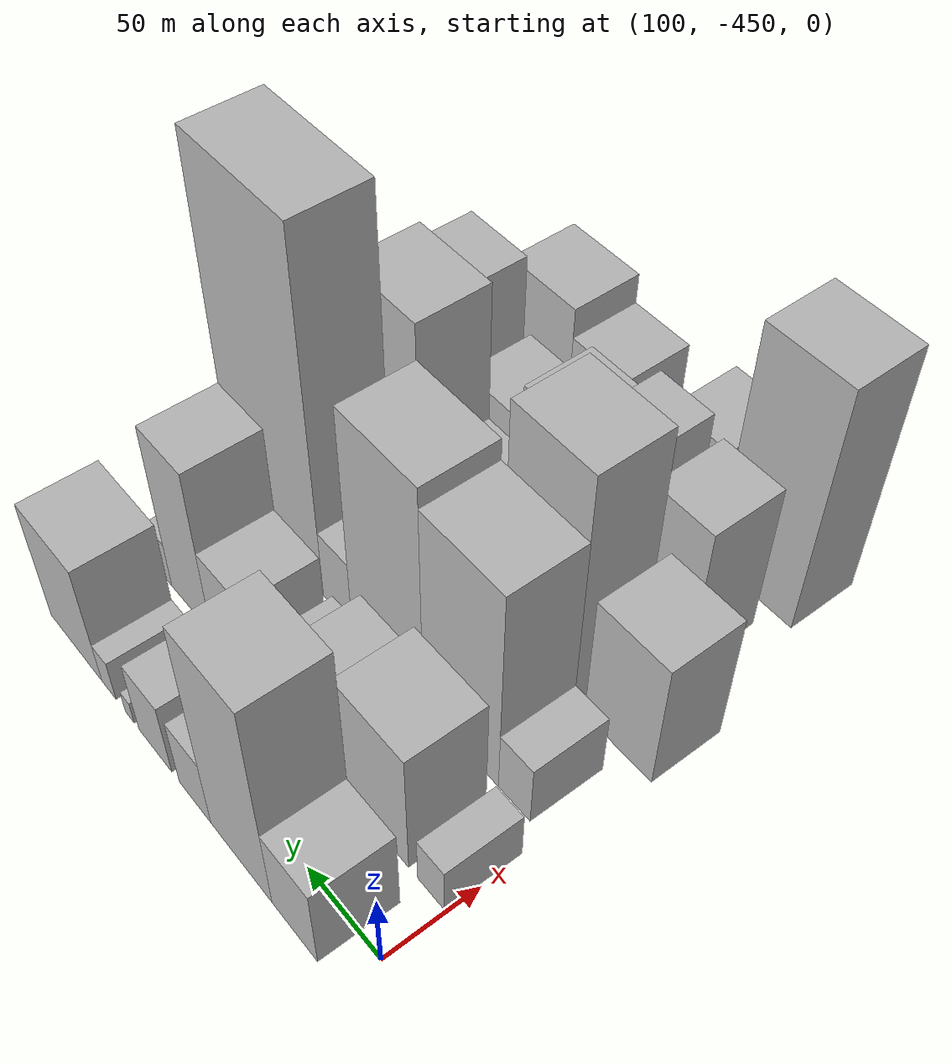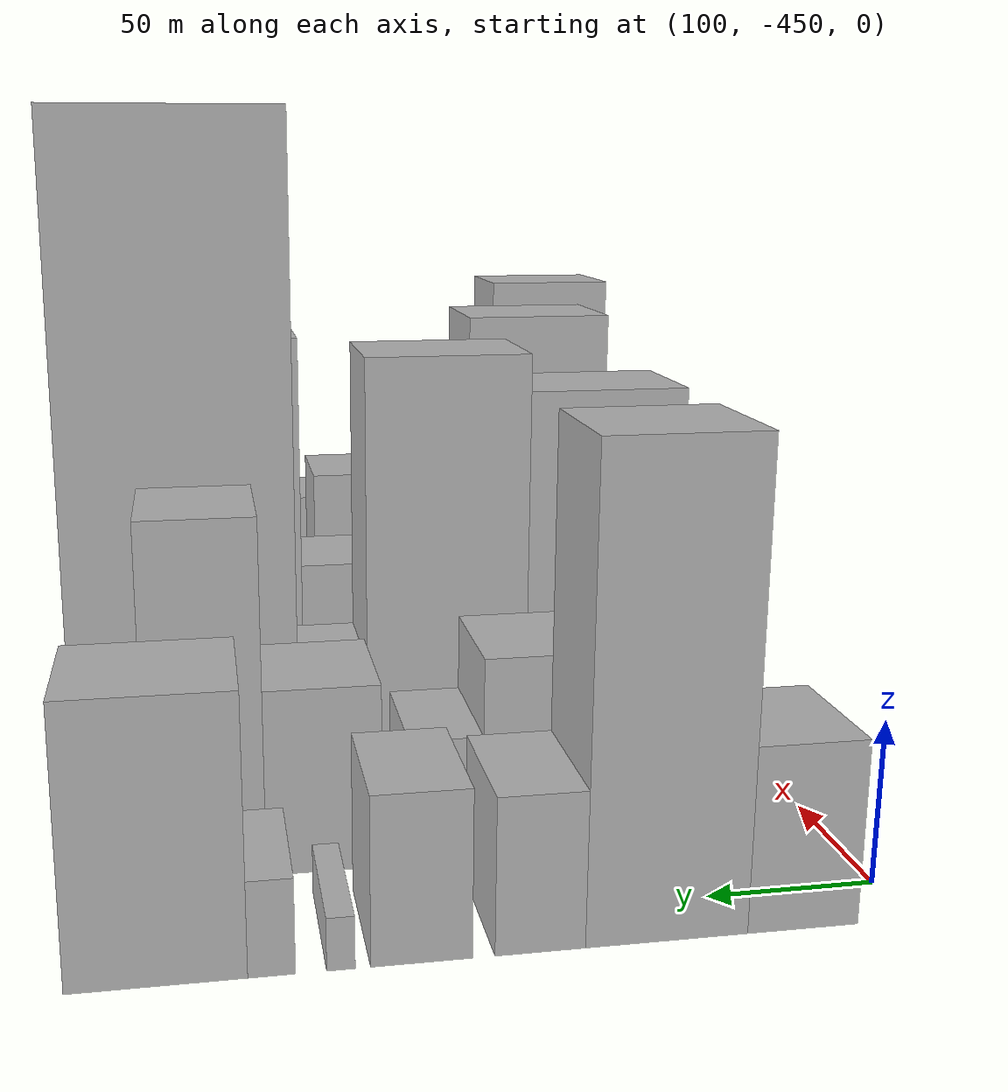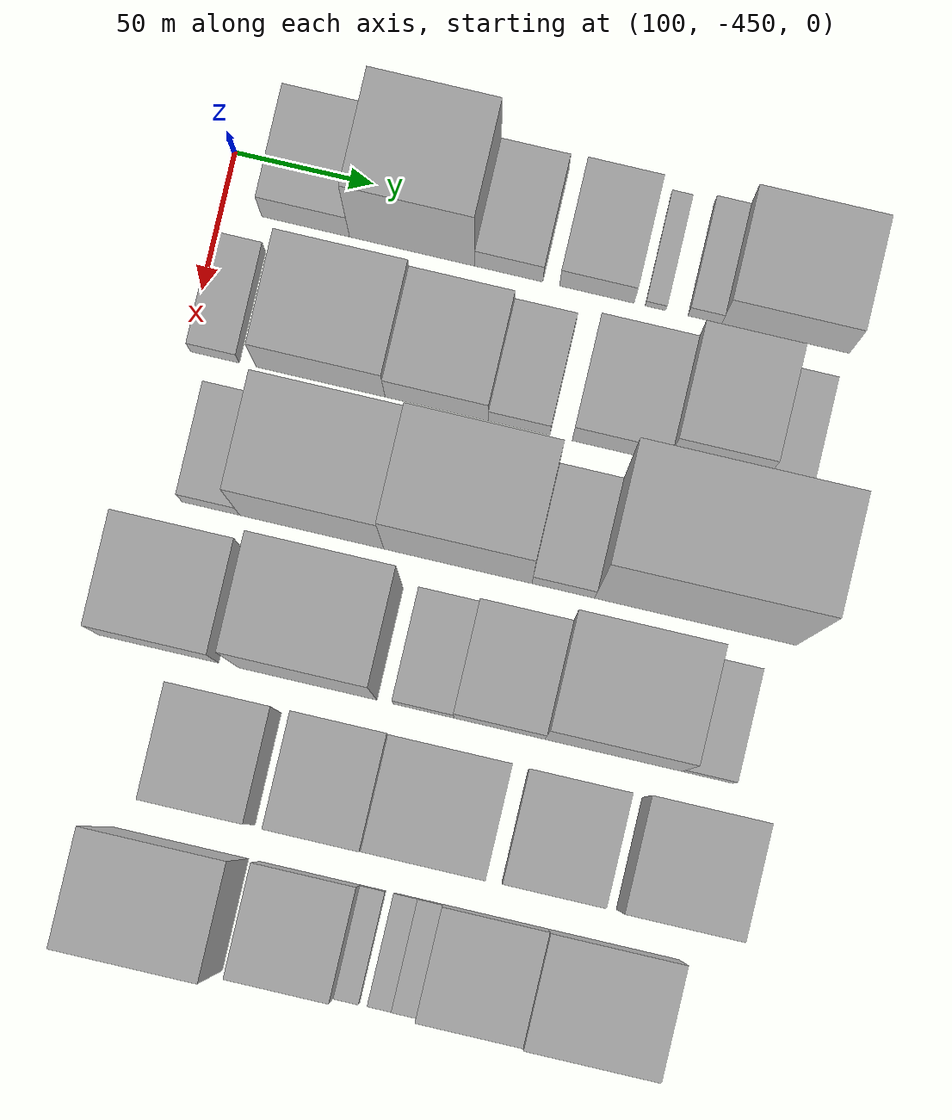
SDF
<sdf version="1.6">
 <world name="default">
  <model name="building_13">
   <static>1</static>
   <pose>100.0000 -419.7006 0 0.000000 0.000000 0.000000</pose>
   <link name="link">
    <pose>0 0 27.00 0 0 0</pose>
    <collision name="collision"><geometry><box><size>40.0000 31.6068 54.0000</size></box></geometry></collision>
    <visual name="visual">
     <cast_shadows>0</cast_shadows>
     <geometry><box><size>40.0000 31.6068 54.0000</size></box></geometry>
     <material>
      <script>
       <uri>model://HANNAS_wall/materials/scripts</uri>
       <uri>model://HANNAS_wall/materials/textures</uri>
       <name>vrc/HANNAS_wall</name>
      </script>
     </material>
    </visual>
   </link>
  </model>
  <model name="building_14">
   <static>1</static>
   <pose>100.0000 -381.3172 0 0.000000 0.000000 0.000000</pose>
   <link name="link">
    <pose>0 0 69.00 0 0 0</pose>
    <collision name="collision"><geometry><box><size>40.0000 45.1601 138.0000</size></box></geometry></collision>
    <visual name="visual">
     <cast_shadows>0</cast_shadows>
     <geometry><box><size>40.0000 45.1601 138.0000</size></box></geometry>
     <material>
      <script>
       <uri>model://HANNAS_wall/materials/scripts</uri>
       <uri>model://HANNAS_wall/materials/textures</uri>
       <name>vrc/HANNAS_wall</name>
      </script>
     </material>
    </visual>
   </link>
  </model>
  <model name="building_15">
   <static>1</static>
   <pose>100.0000 -346.4938 0 0.000000 0.000000 0.000000</pose>
   <link name="link">
    <pose>0 0 22.50 0 0 0</pose>
    <collision name="collision"><geometry><box><size>40.0000 24.4866 45.0000</size></box></geometry></collision>
    <visual name="visual">
     <cast_shadows>0</cast_shadows>
     <geometry><box><size>40.0000 24.4866 45.0000</size></box></geometry>
     <material>
      <script>
       <uri>model://HANNAS_wall/materials/scripts</uri>
       <uri>model://HANNAS_wall/materials/textures</uri>
       <name>vrc/HANNAS_wall</name>
      </script>
     </material>
    </visual>
   </link>
  </model>
  <model name="building_16">
   <static>1</static>
   <pose>100.0000 -314.8308 0 0.000000 0.000000 0.000000</pose>
   <link name="link">
    <pose>0 0 24.00 0 0 0</pose>
    <collision name="collision"><geometry><box><size>40.0000 26.8396 48.0000</size></box></geometry></collision>
    <visual name="visual">
     <cast_shadows>0</cast_shadows>
     <geometry><box><size>40.0000 26.8396 48.0000</size></box></geometry>
     <material>
      <script>
       <uri>model://HANNAS_wall/materials/scripts</uri>
       <uri>model://HANNAS_wall/materials/textures</uri>
       <name>vrc/HANNAS_wall</name>
      </script>
     </material>
    </visual>
   </link>
  </model>
  <model name="building_17">
   <static>1</static>
   <pose>100.0000 -293.7023 0 0.000000 0.000000 0.000000</pose>
   <link name="link">
    <pose>0 0 7.50 0 0 0</pose>
    <collision name="collision"><geometry><box><size>40.0000 7.4174 15.0000</size></box></geometry></collision>
    <visual name="visual">
     <cast_shadows>0</cast_shadows>
     <geometry><box><size>40.0000 7.4174 15.0000</size></box></geometry>
     <material>
      <script>
       <uri>model://HANNAS_wall/materials/scripts</uri>
       <uri>model://HANNAS_wall/materials/textures</uri>
       <name>vrc/HANNAS_wall</name>
      </script>
     </material>
    </visual>
   </link>
  </model>
  <model name="building_18">
   <static>1</static>
   <pose>100.0000 -275.9032 0 0.000000 0.000000 0.000000</pose>
   <link name="link">
    <pose>0 0 13.50 0 0 0</pose>
    <collision name="collision"><geometry><box><size>40.0000 12.1808 27.0000</size></box></geometry></collision>
    <visual name="visual">
     <cast_shadows>0</cast_shadows>
     <geometry><box><size>40.0000 12.1808 27.0000</size></box></geometry>
     <material>
      <script>
       <uri>model://HANNAS_wall/materials/scripts</uri>
       <uri>model://HANNAS_wall/materials/textures</uri>
       <name>vrc/HANNAS_wall</name>
      </script>
     </material>
    </visual>
   </link>
  </model>
  <model name="building_19">
   <static>1</static>
   <pose>100.0000 -246.8613 0 0.000000 0.000000 0.000000</pose>
   <link name="link">
    <pose>0 0 39.00 0 0 0</pose>
    <collision name="collision"><geometry><box><size>40.0000 45.9031 78.0000</size></box></geometry></collision>
    <visual name="visual">
     <cast_shadows>0</cast_shadows>
     <geometry><box><size>40.0000 45.9031 78.0000</size></box></geometry>
     <material>
      <script>
       <uri>model://HANNAS_wall/materials/scripts</uri>
       <uri>model://HANNAS_wall/materials/textures</uri>
       <name>vrc/HANNAS_wall</name>
      </script>
     </material>
    </visual>
   </link>
  </model>
  <model name="building_64">
   <static>1</static>
   <pose>152.0000 -440.0525 0 0.000000 0.000000 0.000000</pose>
   <link name="link">
    <pose>0 0 15.00 0 0 0</pose>
    <collision name="collision"><geometry><box><size>40.0000 17.5593 30.0000</size></box></geometry></collision>
    <visual name="visual">
     <cast_shadows>0</cast_shadows>
     <geometry><box><size>40.0000 17.5593 30.0000</size></box></geometry>
     <material>
      <script>
       <uri>model://HANNAS_wall/materials/scripts</uri>
       <uri>model://HANNAS_wall/materials/textures</uri>
       <name>vrc/HANNAS_wall</name>
      </script>
     </material>
    </visual>
   </link>
  </model>
  <model name="building_65">
   <static>1</static>
   <pose>152.0000 -402.0545 0 0.000000 0.000000 0.000000</pose>
   <link name="link">
    <pose>0 0 40.50 0 0 0</pose>
    <collision name="collision"><geometry><box><size>40.0000 46.4367 81.0000</size></box></geometry></collision>
    <visual name="visual">
     <cast_shadows>0</cast_shadows>
     <geometry><box><size>40.0000 46.4367 81.0000</size></box></geometry>
     <material>
      <script>
       <uri>model://HANNAS_wall/materials/scripts</uri>
       <uri>model://HANNAS_wall/materials/textures</uri>
       <name>vrc/HANNAS_wall</name>
      </script>
     </material>
    </visual>
   </link>
  </model>
  <model name="building_66">
   <static>1</static>
   <pose>152.0000 -360.3025 0 0.000000 0.000000 0.000000</pose>
   <link name="link">
    <pose>0 0 31.50 0 0 0</pose>
    <collision name="collision"><geometry><box><size>40.0000 37.0672 63.0000</size></box></geometry></collision>
    <visual name="visual">
     <cast_shadows>0</cast_shadows>
     <geometry><box><size>40.0000 37.0672 63.0000</size></box></geometry>
     <material>
      <script>
       <uri>model://HANNAS_wall/materials/scripts</uri>
       <uri>model://HANNAS_wall/materials/textures</uri>
       <name>vrc/HANNAS_wall</name>
      </script>
     </material>
    </visual>
   </link>
  </model>
  <model name="building_67">
   <static>1</static>
   <pose>152.0000 -330.6806 0 0.000000 0.000000 0.000000</pose>
   <link name="link">
    <pose>0 0 19.50 0 0 0</pose>
    <collision name="collision"><geometry><box><size>40.0000 22.1766 39.0000</size></box></geometry></collision>
    <visual name="visual">
     <cast_shadows>0</cast_shadows>
     <geometry><box><size>40.0000 22.1766 39.0000</size></box></geometry>
     <material>
      <script>
       <uri>model://HANNAS_wall/materials/scripts</uri>
       <uri>model://HANNAS_wall/materials/textures</uri>
       <name>vrc/HANNAS_wall</name>
      </script>
     </material>
    </visual>
   </link>
  </model>
  <model name="building_68">
   <static>1</static>
   <pose>152.0000 -294.5357 0 0.000000 0.000000 0.000000</pose>
   <link name="link">
    <pose>0 0 28.50 0 0 0</pose>
    <collision name="collision"><geometry><box><size>40.0000 34.1132 57.0000</size></box></geometry></collision>
    <visual name="visual">
     <cast_shadows>0</cast_shadows>
     <geometry><box><size>40.0000 34.1132 57.0000</size></box></geometry>
     <material>
      <script>
       <uri>model://HANNAS_wall/materials/scripts</uri>
       <uri>model://HANNAS_wall/materials/textures</uri>
       <name>vrc/HANNAS_wall</name>
      </script>
     </material>
    </visual>
   </link>
  </model>
  <model name="building_69">
   <static>1</static>
   <pose>152.0000 -260.5243 0 0.000000 0.000000 0.000000</pose>
   <link name="link">
    <pose>0 0 54.00 0 0 0</pose>
    <collision name="collision"><geometry><box><size>40.0000 33.9095 108.0000</size></box></geometry></collision>
    <visual name="visual">
     <cast_shadows>0</cast_shadows>
     <geometry><box><size>40.0000 33.9095 108.0000</size></box></geometry>
     <material>
      <script>
       <uri>model://HANNAS_wall/materials/scripts</uri>
       <uri>model://HANNAS_wall/materials/textures</uri>
       <name>vrc/HANNAS_wall</name>
      </script>
     </material>
    </visual>
   </link>
  </model>
  <model name="building_70">
   <static>1</static>
   <pose>152.0000 -235.2691 0 0.000000 0.000000 0.000000</pose>
   <link name="link">
    <pose>0 0 15.00 0 0 0</pose>
    <collision name="collision"><geometry><box><size>40.0000 16.6010 30.0000</size></box></geometry></collision>
    <visual name="visual">
     <cast_shadows>0</cast_shadows>
     <geometry><box><size>40.0000 16.6010 30.0000</size></box></geometry>
     <material>
      <script>
       <uri>model://HANNAS_wall/materials/scripts</uri>
       <uri>model://HANNAS_wall/materials/textures</uri>
       <name>vrc/HANNAS_wall</name>
      </script>
     </material>
    </visual>
   </link>
  </model>
  <model name="building_110">
   <static>1</static>
   <pose>204.0000 -429.1990 0 0.000000 0.000000 0.000000</pose>
   <link name="link">
    <pose>0 0 19.50 0 0 0</pose>
    <collision name="collision"><geometry><box><size>40.0000 20.7558 39.0000</size></box></geometry></collision>
    <visual name="visual">
     <cast_shadows>0</cast_shadows>
     <geometry><box><size>40.0000 20.7558 39.0000</size></box></geometry>
     <material>
      <script>
       <uri>model://HANNAS_wall/materials/scripts</uri>
       <uri>model://HANNAS_wall/materials/textures</uri>
       <name>vrc/HANNAS_wall</name>
      </script>
     </material>
    </visual>
   </link>
  </model>
  <model name="building_111">
   <static>1</static>
   <pose>204.0000 -392.9264 0 0.000000 0.000000 0.000000</pose>
   <link name="link">
    <pose>0 0 66.00 0 0 0</pose>
    <collision name="collision"><geometry><box><size>40.0000 51.7894 132.0000</size></box></geometry></collision>
    <visual name="visual">
     <cast_shadows>0</cast_shadows>
     <geometry><box><size>40.0000 51.7894 132.0000</size></box></geometry>
     <material>
      <script>
       <uri>model://HANNAS_wall/materials/scripts</uri>
       <uri>model://HANNAS_wall/materials/textures</uri>
       <name>vrc/HANNAS_wall</name>
      </script>
     </material>
    </visual>
   </link>
  </model>
  <model name="building_112">
   <static>1</static>
   <pose>204.0000 -340.4823 0 0.000000 0.000000 0.000000</pose>
   <link name="link">
    <pose>0 0 72.00 0 0 0</pose>
    <collision name="collision"><geometry><box><size>40.0000 53.0989 144.0000</size></box></geometry></collision>
    <visual name="visual">
     <cast_shadows>0</cast_shadows>
     <geometry><box><size>40.0000 53.0989 144.0000</size></box></geometry>
     <material>
      <script>
       <uri>model://HANNAS_wall/materials/scripts</uri>
       <uri>model://HANNAS_wall/materials/textures</uri>
       <name>vrc/HANNAS_wall</name>
      </script>
     </material>
    </visual>
   </link>
  </model>
  <model name="building_113">
   <static>1</static>
   <pose>204.0000 -302.6719 0 0.000000 0.000000 0.000000</pose>
   <link name="link">
    <pose>0 0 22.50 0 0 0</pose>
    <collision name="collision"><geometry><box><size>40.0000 22.5219 45.0000</size></box></geometry></collision>
    <visual name="visual">
     <cast_shadows>0</cast_shadows>
     <geometry><box><size>40.0000 22.5219 45.0000</size></box></geometry>
     <material>
      <script>
       <uri>model://HANNAS_wall/materials/scripts</uri>
       <uri>model://HANNAS_wall/materials/textures</uri>
       <name>vrc/HANNAS_wall</name>
      </script>
     </material>
    </visual>
   </link>
  </model>
  <model name="building_114">
   <static>1</static>
   <pose>204.0000 -255.2475 0 0.000000 0.000000 0.000000</pose>
   <link name="link">
    <pose>0 0 109.50 0 0 0</pose>
    <collision name="collision"><geometry><box><size>40.0000 72.3268 219.0000</size></box></geometry></collision>
    <visual name="visual">
     <cast_shadows>0</cast_shadows>
     <geometry><box><size>40.0000 72.3268 219.0000</size></box></geometry>
     <material>
      <script>
       <uri>model://HANNAS_wall/materials/scripts</uri>
       <uri>model://HANNAS_wall/materials/textures</uri>
       <name>vrc/HANNAS_wall</name>
      </script>
     </material>
    </visual>
   </link>
  </model>
  <model name="building_159">
   <static>1</static>
   <pose>256.0000 -435.5219 0 0.000000 0.000000 0.000000</pose>
   <link name="link">
    <pose>0 0 40.50 0 0 0</pose>
    <collision name="collision"><geometry><box><size>40.0000 42.8469 81.0000</size></box></geometry></collision>
    <visual name="visual">
     <cast_shadows>0</cast_shadows>
     <geometry><box><size>40.0000 42.8469 81.0000</size></box></geometry>
     <material>
      <script>
       <uri>model://HANNAS_wall/materials/scripts</uri>
       <uri>model://HANNAS_wall/materials/textures</uri>
       <name>vrc/HANNAS_wall</name>
      </script>
     </material>
    </visual>
   </link>
  </model>
  <model name="building_160">
   <static>1</static>
   <pose>256.0000 -382.2019 0 0.000000 0.000000 0.000000</pose>
   <link name="link">
    <pose>0 0 75.00 0 0 0</pose>
    <collision name="collision"><geometry><box><size>40.0000 49.7930 150.0000</size></box></geometry></collision>
    <visual name="visual">
     <cast_shadows>0</cast_shadows>
     <geometry><box><size>40.0000 49.7930 150.0000</size></box></geometry>
     <material>
      <script>
       <uri>model://HANNAS_wall/materials/scripts</uri>
       <uri>model://HANNAS_wall/materials/textures</uri>
       <name>vrc/HANNAS_wall</name>
      </script>
     </material>
    </visual>
   </link>
  </model>
  <model name="building_161">
   <static>1</static>
   <pose>256.0000 -340.4805 0 0.000000 0.000000 0.000000</pose>
   <link name="link">
    <pose>0 0 21.00 0 0 0</pose>
    <collision name="collision"><geometry><box><size>40.0000 21.6498 42.0000</size></box></geometry></collision>
    <visual name="visual">
     <cast_shadows>0</cast_shadows>
     <geometry><box><size>40.0000 21.6498 42.0000</size></box></geometry>
     <material>
      <script>
       <uri>model://HANNAS_wall/materials/scripts</uri>
       <uri>model://HANNAS_wall/materials/textures</uri>
       <name>vrc/HANNAS_wall</name>
      </script>
     </material>
    </visual>
   </link>
  </model>
  <model name="building_162">
   <static>1</static>
   <pose>256.0000 -313.4008 0 0.000000 0.000000 0.000000</pose>
   <link name="link">
    <pose>0 0 31.50 0 0 0</pose>
    <collision name="collision"><geometry><box><size>40.0000 32.5097 63.0000</size></box></geometry></collision>
    <visual name="visual">
     <cast_shadows>0</cast_shadows>
     <geometry><box><size>40.0000 32.5097 63.0000</size></box></geometry>
     <material>
      <script>
       <uri>model://HANNAS_wall/materials/scripts</uri>
       <uri>model://HANNAS_wall/materials/textures</uri>
       <name>vrc/HANNAS_wall</name>
      </script>
     </material>
    </visual>
   </link>
  </model>
  <model name="building_163">
   <static>1</static>
   <pose>256.0000 -272.5962 0 0.000000 0.000000 0.000000</pose>
   <link name="link">
    <pose>0 0 72.00 0 0 0</pose>
    <collision name="collision"><geometry><box><size>40.0000 49.0995 144.0000</size></box></geometry></collision>
    <visual name="visual">
     <cast_shadows>0</cast_shadows>
     <geometry><box><size>40.0000 49.0995 144.0000</size></box></geometry>
     <material>
      <script>
       <uri>model://HANNAS_wall/materials/scripts</uri>
       <uri>model://HANNAS_wall/materials/textures</uri>
       <name>vrc/HANNAS_wall</name>
      </script>
     </material>
    </visual>
   </link>
  </model>
  <model name="building_164">
   <static>1</static>
   <pose>256.0000 -238.8613 0 0.000000 0.000000 0.000000</pose>
   <link name="link">
    <pose>0 0 16.50 0 0 0</pose>
    <collision name="collision"><geometry><box><size>40.0000 18.3702 33.0000</size></box></geometry></collision>
    <visual name="visual">
     <cast_shadows>0</cast_shadows>
     <geometry><box><size>40.0000 18.3702 33.0000</size></box></geometry>
     <material>
      <script>
       <uri>model://HANNAS_wall/materials/scripts</uri>
       <uri>model://HANNAS_wall/materials/textures</uri>
       <name>vrc/HANNAS_wall</name>
      </script>
     </material>
    </visual>
   </link>
  </model>
  <model name="building_208">
   <static>1</static>
   <pose>308.0000 -406.8236 0 0.000000 0.000000 0.000000</pose>
   <link name="link">
    <pose>0 0 46.50 0 0 0</pose>
    <collision name="collision"><geometry><box><size>40.0000 36.0913 93.0000</size></box></geometry></collision>
    <visual name="visual">
     <cast_shadows>0</cast_shadows>
     <geometry><box><size>40.0000 36.0913 93.0000</size></box></geometry>
     <material>
      <script>
       <uri>model://HANNAS_wall/materials/scripts</uri>
       <uri>model://HANNAS_wall/materials/textures</uri>
       <name>vrc/HANNAS_wall</name>
      </script>
     </material>
    </visual>
   </link>
  </model>
  <model name="building_209">
   <static>1</static>
   <pose>308.0000 -365.3945 0 0.000000 0.000000 0.000000</pose>
   <link name="link">
    <pose>0 0 51.00 0 0 0</pose>
    <collision name="collision"><geometry><box><size>40.0000 32.7669 102.0000</size></box></geometry></collision>
    <visual name="visual">
     <cast_shadows>0</cast_shadows>
     <geometry><box><size>40.0000 32.7669 102.0000</size></box></geometry>
     <material>
      <script>
       <uri>model://HANNAS_wall/materials/scripts</uri>
       <uri>model://HANNAS_wall/materials/textures</uri>
       <name>vrc/HANNAS_wall</name>
      </script>
     </material>
    </visual>
   </link>
  </model>
  <model name="building_210">
   <static>1</static>
   <pose>308.0000 -327.7071 0 0.000000 0.000000 0.000000</pose>
   <link name="link">
    <pose>0 0 42.00 0 0 0</pose>
    <collision name="collision"><geometry><box><size>40.0000 42.6079 84.0000</size></box></geometry></collision>
    <visual name="visual">
     <cast_shadows>0</cast_shadows>
     <geometry><box><size>40.0000 42.6079 84.0000</size></box></geometry>
     <material>
      <script>
       <uri>model://HANNAS_wall/materials/scripts</uri>
       <uri>model://HANNAS_wall/materials/textures</uri>
       <name>vrc/HANNAS_wall</name>
      </script>
     </material>
    </visual>
   </link>
  </model>
  <model name="building_211">
   <static>1</static>
   <pose>308.0000 -282.4450 0 0.000000 0.000000 0.000000</pose>
   <link name="link">
    <pose>0 0 30.00 0 0 0</pose>
    <collision name="collision"><geometry><box><size>40.0000 35.9163 60.0000</size></box></geometry></collision>
    <visual name="visual">
     <cast_shadows>0</cast_shadows>
     <geometry><box><size>40.0000 35.9163 60.0000</size></box></geometry>
     <material>
      <script>
       <uri>model://HANNAS_wall/materials/scripts</uri>
       <uri>model://HANNAS_wall/materials/textures</uri>
       <name>vrc/HANNAS_wall</name>
      </script>
     </material>
    </visual>
   </link>
  </model>
  <model name="building_212">
   <static>1</static>
   <pose>308.0000 -239.1399 0 0.000000 0.000000 0.000000</pose>
   <link name="link">
    <pose>0 0 52.50 0 0 0</pose>
    <collision name="collision"><geometry><box><size>40.0000 40.6938 105.0000</size></box></geometry></collision>
    <visual name="visual">
     <cast_shadows>0</cast_shadows>
     <geometry><box><size>40.0000 40.6938 105.0000</size></box></geometry>
     <material>
      <script>
       <uri>model://HANNAS_wall/materials/scripts</uri>
       <uri>model://HANNAS_wall/materials/textures</uri>
       <name>vrc/HANNAS_wall</name>
      </script>
     </material>
    </visual>
   </link>
  </model>
  <model name="building_258">
   <static>1</static>
   <pose>360.0000 -412.7654 0 0.000000 0.000000 0.000000</pose>
   <link name="link">
    <pose>0 0 76.50 0 0 0</pose>
    <collision name="collision"><geometry><box><size>40.0000 49.1009 153.0000</size></box></geometry></collision>
    <visual name="visual">
     <cast_shadows>0</cast_shadows>
     <geometry><box><size>40.0000 49.1009 153.0000</size></box></geometry>
     <material>
      <script>
       <uri>model://HANNAS_wall/materials/scripts</uri>
       <uri>model://HANNAS_wall/materials/textures</uri>
       <name>vrc/HANNAS_wall</name>
      </script>
     </material>
    </visual>
   </link>
  </model>
  <model name="building_259">
   <static>1</static>
   <pose>360.0000 -366.0842 0 0.000000 0.000000 0.000000</pose>
   <link name="link">
    <pose>0 0 36.00 0 0 0</pose>
    <collision name="collision"><geometry><box><size>40.0000 36.2615 72.0000</size></box></geometry></collision>
    <visual name="visual">
     <cast_shadows>0</cast_shadows>
     <geometry><box><size>40.0000 36.2615 72.0000</size></box></geometry>
     <material>
      <script>
       <uri>model://HANNAS_wall/materials/scripts</uri>
       <uri>model://HANNAS_wall/materials/textures</uri>
       <name>vrc/HANNAS_wall</name>
      </script>
     </material>
    </visual>
   </link>
  </model>
  <model name="building_260">
   <static>1</static>
   <pose>360.0000 -343.5047 0 0.000000 0.000000 0.000000</pose>
   <link name="link">
    <pose>0 0 10.50 0 0 0</pose>
    <collision name="collision"><geometry><box><size>40.0000 8.8976 21.0000</size></box></geometry></collision>
    <visual name="visual">
     <cast_shadows>0</cast_shadows>
     <geometry><box><size>40.0000 8.8976 21.0000</size></box></geometry>
     <material>
      <script>
       <uri>model://HANNAS_wall/materials/scripts</uri>
       <uri>model://HANNAS_wall/materials/textures</uri>
       <name>vrc/HANNAS_wall</name>
      </script>
     </material>
    </visual>
   </link>
  </model>
  <model name="building_261">
   <static>1</static>
   <pose>360.0000 -331.7904 0 0.000000 0.000000 0.000000</pose>
   <link name="link">
    <pose>0 0 9.00 0 0 0</pose>
    <collision name="collision"><geometry><box><size>40.0000 8.5310 18.0000</size></box></geometry></collision>
    <visual name="visual">
     <cast_shadows>0</cast_shadows>
     <geometry><box><size>40.0000 8.5310 18.0000</size></box></geometry>
     <material>
      <script>
       <uri>model://HANNAS_wall/materials/scripts</uri>
       <uri>model://HANNAS_wall/materials/textures</uri>
       <name>vrc/HANNAS_wall</name>
      </script>
     </material>
    </visual>
   </link>
  </model>
  <model name="building_262">
   <static>1</static>
   <pose>360.0000 -323.0317 0 0.000000 0.000000 0.000000</pose>
   <link name="link">
    <pose>0 0 10.50 0 0 0</pose>
    <collision name="collision"><geometry><box><size>40.0000 8.9864 21.0000</size></box></geometry></collision>
    <visual name="visual">
     <cast_shadows>0</cast_shadows>
     <geometry><box><size>40.0000 8.9864 21.0000</size></box></geometry>
     <material>
      <script>
       <uri>model://HANNAS_wall/materials/scripts</uri>
       <uri>model://HANNAS_wall/materials/textures</uri>
       <name>vrc/HANNAS_wall</name>
      </script>
     </material>
    </visual>
   </link>
  </model>
  <model name="building_263">
   <static>1</static>
   <pose>360.0000 -299.8633 0 0.000000 0.000000 0.000000</pose>
   <link name="link">
    <pose>0 0 31.50 0 0 0</pose>
    <collision name="collision"><geometry><box><size>40.0000 37.3503 63.0000</size></box></geometry></collision>
    <visual name="visual">
     <cast_shadows>0</cast_shadows>
     <geometry><box><size>40.0000 37.3503 63.0000</size></box></geometry>
     <material>
      <script>
       <uri>model://HANNAS_wall/materials/scripts</uri>
       <uri>model://HANNAS_wall/materials/textures</uri>
       <name>vrc/HANNAS_wall</name>
      </script>
     </material>
    </visual>
   </link>
  </model>
  <model name="building_264">
   <static>1</static>
   <pose>360.0000 -257.7017 0 0.000000 0.000000 0.000000</pose>
   <link name="link">
    <pose>0 0 40.50 0 0 0</pose>
    <collision name="collision"><geometry><box><size>40.0000 46.9730 81.0000</size></box></geometry></collision>
    <visual name="visual">
     <cast_shadows>0</cast_shadows>
     <geometry><box><size>40.0000 46.9730 81.0000</size></box></geometry>
     <material>
      <script>
       <uri>model://HANNAS_wall/materials/scripts</uri>
       <uri>model://HANNAS_wall/materials/textures</uri>
       <name>vrc/HANNAS_wall</name>
      </script>
     </material>
    </visual>
   </link>
  </model>
 </world>
</sdf>
